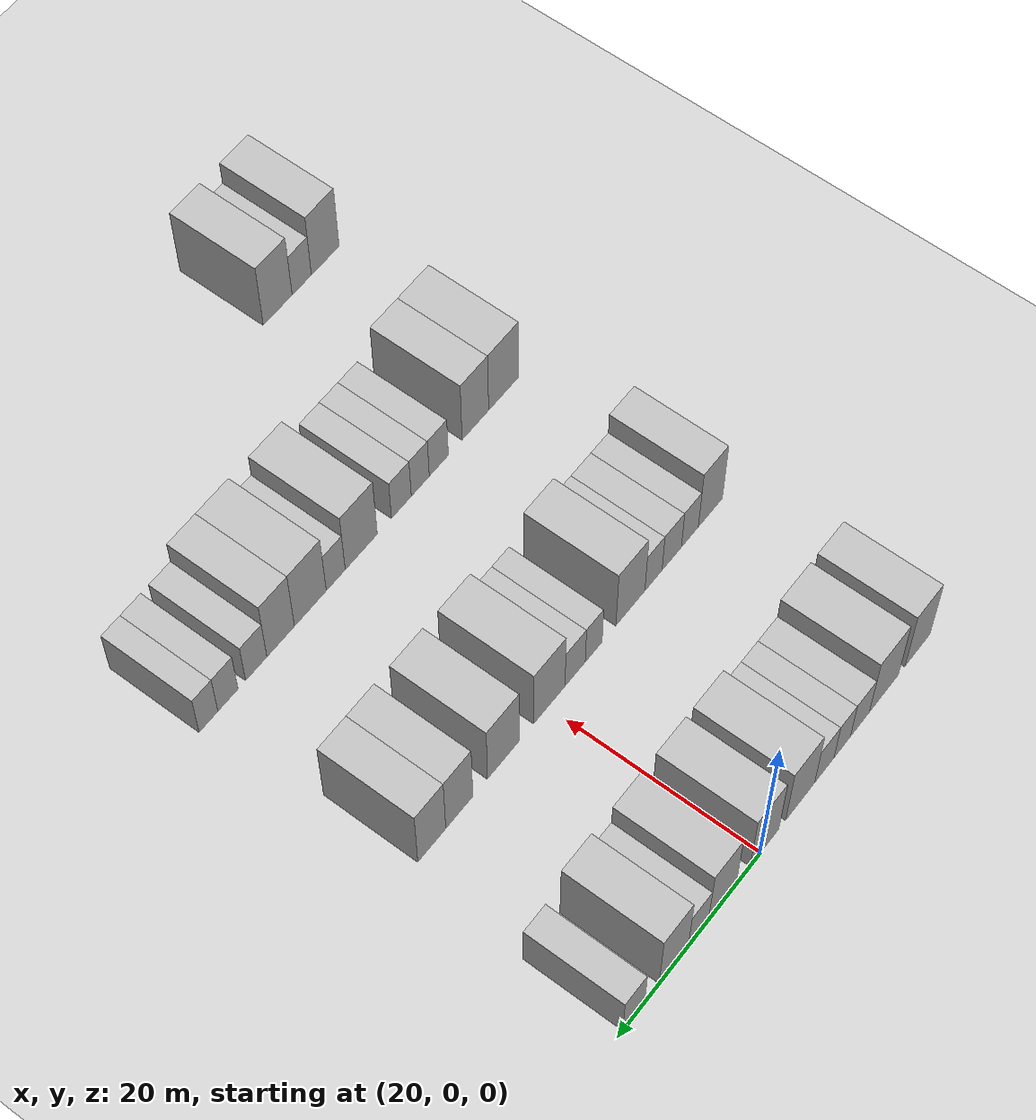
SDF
<sdf version="1.6">
 <world name="default">
  <include><name>ground_plane_1</name><uri>model://HANNAS_ground_plane</uri></include>
  <model name="building_91">
   <static>1</static>
   <pose>25.0000 -23.4855 0 0.000000 0.000000 0.000000</pose>
   <link name="link">
    <pose>0 0 4.50 0 0 0</pose>
    <collision name="collision"><geometry><box><size>10.0000 3.9057 9.0000</size></box></geometry></collision>
    <visual name="visual">
     <cast_shadows>0</cast_shadows>
     <geometry><box><size>10.0000 3.9057 9.0000</size></box></geometry>
     <material>
      <script>
       <uri>model://HANNAS_wall/materials/scripts</uri>
       <uri>model://HANNAS_wall/materials/textures</uri>
       <name>vrc/HANNAS_wall</name>
      </script>
     </material>
    </visual>
   </link>
  </model>
  <model name="building_92">
   <static>1</static>
   <pose>25.0000 -18.3001 0 0.000000 0.000000 0.000000</pose>
   <link name="link">
    <pose>0 0 4.50 0 0 0</pose>
    <collision name="collision"><geometry><box><size>10.0000 4.4651 9.0000</size></box></geometry></collision>
    <visual name="visual">
     <cast_shadows>0</cast_shadows>
     <geometry><box><size>10.0000 4.4651 9.0000</size></box></geometry>
     <material>
      <script>
       <uri>model://HANNAS_wall/materials/scripts</uri>
       <uri>model://HANNAS_wall/materials/textures</uri>
       <name>vrc/HANNAS_wall</name>
      </script>
     </material>
    </visual>
   </link>
  </model>
  <model name="building_93">
   <static>1</static>
   <pose>25.0000 -14.6301 0 0.000000 0.000000 0.000000</pose>
   <link name="link">
    <pose>0 0 3.00 0 0 0</pose>
    <collision name="collision"><geometry><box><size>10.0000 2.8748 6.0000</size></box></geometry></collision>
    <visual name="visual">
     <cast_shadows>0</cast_shadows>
     <geometry><box><size>10.0000 2.8748 6.0000</size></box></geometry>
     <material>
      <script>
       <uri>model://HANNAS_wall/materials/scripts</uri>
       <uri>model://HANNAS_wall/materials/textures</uri>
       <name>vrc/HANNAS_wall</name>
      </script>
     </material>
    </visual>
   </link>
  </model>
  <model name="building_94">
   <static>1</static>
   <pose>25.0000 -11.9665 0 0.000000 0.000000 0.000000</pose>
   <link name="link">
    <pose>0 0 3.00 0 0 0</pose>
    <collision name="collision"><geometry><box><size>10.0000 2.4523 6.0000</size></box></geometry></collision>
    <visual name="visual">
     <cast_shadows>0</cast_shadows>
     <geometry><box><size>10.0000 2.4523 6.0000</size></box></geometry>
     <material>
      <script>
       <uri>model://HANNAS_wall/materials/scripts</uri>
       <uri>model://HANNAS_wall/materials/textures</uri>
       <name>vrc/HANNAS_wall</name>
      </script>
     </material>
    </visual>
   </link>
  </model>
  <model name="building_95">
   <static>1</static>
   <pose>25.0000 -9.3056 0 0.000000 0.000000 0.000000</pose>
   <link name="link">
    <pose>0 0 3.00 0 0 0</pose>
    <collision name="collision"><geometry><box><size>10.0000 2.8696 6.0000</size></box></geometry></collision>
    <visual name="visual">
     <cast_shadows>0</cast_shadows>
     <geometry><box><size>10.0000 2.8696 6.0000</size></box></geometry>
     <material>
      <script>
       <uri>model://HANNAS_wall/materials/scripts</uri>
       <uri>model://HANNAS_wall/materials/textures</uri>
       <name>vrc/HANNAS_wall</name>
      </script>
     </material>
    </visual>
   </link>
  </model>
  <model name="building_96">
   <static>1</static>
   <pose>25.0000 -5.7426 0 0.000000 0.000000 0.000000</pose>
   <link name="link">
    <pose>0 0 4.50 0 0 0</pose>
    <collision name="collision"><geometry><box><size>10.0000 4.2564 9.0000</size></box></geometry></collision>
    <visual name="visual">
     <cast_shadows>0</cast_shadows>
     <geometry><box><size>10.0000 4.2564 9.0000</size></box></geometry>
     <material>
      <script>
       <uri>model://HANNAS_wall/materials/scripts</uri>
       <uri>model://HANNAS_wall/materials/textures</uri>
       <name>vrc/HANNAS_wall</name>
      </script>
     </material>
    </visual>
   </link>
  </model>
  <model name="building_97">
   <static>1</static>
   <pose>25.0000 -0.5386 0 0.000000 0.000000 0.000000</pose>
   <link name="link">
    <pose>0 0 4.50 0 0 0</pose>
    <collision name="collision"><geometry><box><size>10.0000 4.1515 9.0000</size></box></geometry></collision>
    <visual name="visual">
     <cast_shadows>0</cast_shadows>
     <geometry><box><size>10.0000 4.1515 9.0000</size></box></geometry>
     <material>
      <script>
       <uri>model://HANNAS_wall/materials/scripts</uri>
       <uri>model://HANNAS_wall/materials/textures</uri>
       <name>vrc/HANNAS_wall</name>
      </script>
     </material>
    </visual>
   </link>
  </model>
  <model name="building_98">
   <static>1</static>
   <pose>25.0000 5.4912 0 0.000000 0.000000 0.000000</pose>
   <link name="link">
    <pose>0 0 4.50 0 0 0</pose>
    <collision name="collision"><geometry><box><size>10.0000 3.9081 9.0000</size></box></geometry></collision>
    <visual name="visual">
     <cast_shadows>0</cast_shadows>
     <geometry><box><size>10.0000 3.9081 9.0000</size></box></geometry>
     <material>
      <script>
       <uri>model://HANNAS_wall/materials/scripts</uri>
       <uri>model://HANNAS_wall/materials/textures</uri>
       <name>vrc/HANNAS_wall</name>
      </script>
     </material>
    </visual>
   </link>
  </model>
  <model name="building_99">
   <static>1</static>
   <pose>25.0000 8.8556 0 0.000000 0.000000 0.000000</pose>
   <link name="link">
    <pose>0 0 3.00 0 0 0</pose>
    <collision name="collision"><geometry><box><size>10.0000 2.8207 6.0000</size></box></geometry></collision>
    <visual name="visual">
     <cast_shadows>0</cast_shadows>
     <geometry><box><size>10.0000 2.8207 6.0000</size></box></geometry>
     <material>
      <script>
       <uri>model://HANNAS_wall/materials/scripts</uri>
       <uri>model://HANNAS_wall/materials/textures</uri>
       <name>vrc/HANNAS_wall</name>
      </script>
     </material>
    </visual>
   </link>
  </model>
  <model name="building_100">
   <static>1</static>
   <pose>25.0000 12.2772 0 0.000000 0.000000 0.000000</pose>
   <link name="link">
    <pose>0 0 4.50 0 0 0</pose>
    <collision name="collision"><geometry><box><size>10.0000 4.0226 9.0000</size></box></geometry></collision>
    <visual name="visual">
     <cast_shadows>0</cast_shadows>
     <geometry><box><size>10.0000 4.0226 9.0000</size></box></geometry>
     <material>
      <script>
       <uri>model://HANNAS_wall/materials/scripts</uri>
       <uri>model://HANNAS_wall/materials/textures</uri>
       <name>vrc/HANNAS_wall</name>
      </script>
     </material>
    </visual>
   </link>
  </model>
  <model name="building_101">
   <static>1</static>
   <pose>25.0000 17.7709 0 0.000000 0.000000 0.000000</pose>
   <link name="link">
    <pose>0 0 3.00 0 0 0</pose>
    <collision name="collision"><geometry><box><size>10.0000 2.9647 6.0000</size></box></geometry></collision>
    <visual name="visual">
     <cast_shadows>0</cast_shadows>
     <geometry><box><size>10.0000 2.9647 6.0000</size></box></geometry>
     <material>
      <script>
       <uri>model://HANNAS_wall/materials/scripts</uri>
       <uri>model://HANNAS_wall/materials/textures</uri>
       <name>vrc/HANNAS_wall</name>
      </script>
     </material>
    </visual>
   </link>
  </model>
  <model name="building_278">
   <static>1</static>
   <pose>47.0000 -23.8120 0 0.000000 0.000000 0.000000</pose>
   <link name="link">
    <pose>0 0 4.50 0 0 0</pose>
    <collision name="collision"><geometry><box><size>10.0000 3.6523 9.0000</size></box></geometry></collision>
    <visual name="visual">
     <cast_shadows>0</cast_shadows>
     <geometry><box><size>10.0000 3.6523 9.0000</size></box></geometry>
     <material>
      <script>
       <uri>model://HANNAS_wall/materials/scripts</uri>
       <uri>model://HANNAS_wall/materials/textures</uri>
       <name>vrc/HANNAS_wall</name>
      </script>
     </material>
    </visual>
   </link>
  </model>
  <model name="building_279">
   <static>1</static>
   <pose>47.0000 -20.7096 0 0.000000 0.000000 0.000000</pose>
   <link name="link">
    <pose>0 0 3.00 0 0 0</pose>
    <collision name="collision"><geometry><box><size>10.0000 2.5525 6.0000</size></box></geometry></collision>
    <visual name="visual">
     <cast_shadows>0</cast_shadows>
     <geometry><box><size>10.0000 2.5525 6.0000</size></box></geometry>
     <material>
      <script>
       <uri>model://HANNAS_wall/materials/scripts</uri>
       <uri>model://HANNAS_wall/materials/textures</uri>
       <name>vrc/HANNAS_wall</name>
      </script>
     </material>
    </visual>
   </link>
  </model>
  <model name="building_280">
   <static>1</static>
   <pose>47.0000 -17.9913 0 0.000000 0.000000 0.000000</pose>
   <link name="link">
    <pose>0 0 3.00 0 0 0</pose>
    <collision name="collision"><geometry><box><size>10.0000 2.8841 6.0000</size></box></geometry></collision>
    <visual name="visual">
     <cast_shadows>0</cast_shadows>
     <geometry><box><size>10.0000 2.8841 6.0000</size></box></geometry>
     <material>
      <script>
       <uri>model://HANNAS_wall/materials/scripts</uri>
       <uri>model://HANNAS_wall/materials/textures</uri>
       <name>vrc/HANNAS_wall</name>
      </script>
     </material>
    </visual>
   </link>
  </model>
  <model name="building_281">
   <static>1</static>
   <pose>47.0000 -15.2765 0 0.000000 0.000000 0.000000</pose>
   <link name="link">
    <pose>0 0 3.00 0 0 0</pose>
    <collision name="collision"><geometry><box><size>10.0000 2.5456 6.0000</size></box></geometry></collision>
    <visual name="visual">
     <cast_shadows>0</cast_shadows>
     <geometry><box><size>10.0000 2.5456 6.0000</size></box></geometry>
     <material>
      <script>
       <uri>model://HANNAS_wall/materials/scripts</uri>
       <uri>model://HANNAS_wall/materials/textures</uri>
       <name>vrc/HANNAS_wall</name>
      </script>
     </material>
    </visual>
   </link>
  </model>
  <model name="building_282">
   <static>1</static>
   <pose>47.0000 -11.8802 0 0.000000 0.000000 0.000000</pose>
   <link name="link">
    <pose>0 0 4.50 0 0 0</pose>
    <collision name="collision"><geometry><box><size>10.0000 4.2469 9.0000</size></box></geometry></collision>
    <visual name="visual">
     <cast_shadows>0</cast_shadows>
     <geometry><box><size>10.0000 4.2469 9.0000</size></box></geometry>
     <material>
      <script>
       <uri>model://HANNAS_wall/materials/scripts</uri>
       <uri>model://HANNAS_wall/materials/textures</uri>
       <name>vrc/HANNAS_wall</name>
      </script>
     </material>
    </visual>
   </link>
  </model>
  <model name="building_283">
   <static>1</static>
   <pose>47.0000 -6.5452 0 0.000000 0.000000 0.000000</pose>
   <link name="link">
    <pose>0 0 3.00 0 0 0</pose>
    <collision name="collision"><geometry><box><size>10.0000 2.4231 6.0000</size></box></geometry></collision>
    <visual name="visual">
     <cast_shadows>0</cast_shadows>
     <geometry><box><size>10.0000 2.4231 6.0000</size></box></geometry>
     <material>
      <script>
       <uri>model://HANNAS_wall/materials/scripts</uri>
       <uri>model://HANNAS_wall/materials/textures</uri>
       <name>vrc/HANNAS_wall</name>
      </script>
     </material>
    </visual>
   </link>
  </model>
  <model name="building_284">
   <static>1</static>
   <pose>47.0000 -3.8878 0 0.000000 0.000000 0.000000</pose>
   <link name="link">
    <pose>0 0 3.00 0 0 0</pose>
    <collision name="collision"><geometry><box><size>10.0000 2.8918 6.0000</size></box></geometry></collision>
    <visual name="visual">
     <cast_shadows>0</cast_shadows>
     <geometry><box><size>10.0000 2.8918 6.0000</size></box></geometry>
     <material>
      <script>
       <uri>model://HANNAS_wall/materials/scripts</uri>
       <uri>model://HANNAS_wall/materials/textures</uri>
       <name>vrc/HANNAS_wall</name>
      </script>
     </material>
    </visual>
   </link>
  </model>
  <model name="building_285">
   <static>1</static>
   <pose>47.0000 -0.2331 0 0.000000 0.000000 0.000000</pose>
   <link name="link">
    <pose>0 0 4.50 0 0 0</pose>
    <collision name="collision"><geometry><box><size>10.0000 4.4175 9.0000</size></box></geometry></collision>
    <visual name="visual">
     <cast_shadows>0</cast_shadows>
     <geometry><box><size>10.0000 4.4175 9.0000</size></box></geometry>
     <material>
      <script>
       <uri>model://HANNAS_wall/materials/scripts</uri>
       <uri>model://HANNAS_wall/materials/textures</uri>
       <name>vrc/HANNAS_wall</name>
      </script>
     </material>
    </visual>
   </link>
  </model>
  <model name="building_286">
   <static>1</static>
   <pose>47.0000 6.1808 0 0.000000 0.000000 0.000000</pose>
   <link name="link">
    <pose>0 0 4.50 0 0 0</pose>
    <collision name="collision"><geometry><box><size>10.0000 4.4102 9.0000</size></box></geometry></collision>
    <visual name="visual">
     <cast_shadows>0</cast_shadows>
     <geometry><box><size>10.0000 4.4102 9.0000</size></box></geometry>
     <material>
      <script>
       <uri>model://HANNAS_wall/materials/scripts</uri>
       <uri>model://HANNAS_wall/materials/textures</uri>
       <name>vrc/HANNAS_wall</name>
      </script>
     </material>
    </visual>
   </link>
  </model>
  <model name="building_287">
   <static>1</static>
   <pose>47.0000 12.2134 0 0.000000 0.000000 0.000000</pose>
   <link name="link">
    <pose>0 0 4.50 0 0 0</pose>
    <collision name="collision"><geometry><box><size>10.0000 3.6551 9.0000</size></box></geometry></collision>
    <visual name="visual">
     <cast_shadows>0</cast_shadows>
     <geometry><box><size>10.0000 3.6551 9.0000</size></box></geometry>
     <material>
      <script>
       <uri>model://HANNAS_wall/materials/scripts</uri>
       <uri>model://HANNAS_wall/materials/textures</uri>
       <name>vrc/HANNAS_wall</name>
      </script>
     </material>
    </visual>
   </link>
  </model>
  <model name="building_288">
   <static>1</static>
   <pose>47.0000 15.9133 0 0.000000 0.000000 0.000000</pose>
   <link name="link">
    <pose>0 0 4.50 0 0 0</pose>
    <collision name="collision"><geometry><box><size>10.0000 3.7447 9.0000</size></box></geometry></collision>
    <visual name="visual">
     <cast_shadows>0</cast_shadows>
     <geometry><box><size>10.0000 3.7447 9.0000</size></box></geometry>
     <material>
      <script>
       <uri>model://HANNAS_wall/materials/scripts</uri>
       <uri>model://HANNAS_wall/materials/textures</uri>
       <name>vrc/HANNAS_wall</name>
      </script>
     </material>
    </visual>
   </link>
  </model>
  <model name="building_466">
   <static>1</static>
   <pose>69.0000 -22.6189 0 0.000000 0.000000 0.000000</pose>
   <link name="link">
    <pose>0 0 4.50 0 0 0</pose>
    <collision name="collision"><geometry><box><size>10.0000 4.4505 9.0000</size></box></geometry></collision>
    <visual name="visual">
     <cast_shadows>0</cast_shadows>
     <geometry><box><size>10.0000 4.4505 9.0000</size></box></geometry>
     <material>
      <script>
       <uri>model://HANNAS_wall/materials/scripts</uri>
       <uri>model://HANNAS_wall/materials/textures</uri>
       <name>vrc/HANNAS_wall</name>
      </script>
     </material>
    </visual>
   </link>
  </model>
  <model name="building_467">
   <static>1</static>
   <pose>69.0000 -18.4472 0 0.000000 0.000000 0.000000</pose>
   <link name="link">
    <pose>0 0 4.50 0 0 0</pose>
    <collision name="collision"><geometry><box><size>10.0000 3.8929 9.0000</size></box></geometry></collision>
    <visual name="visual">
     <cast_shadows>0</cast_shadows>
     <geometry><box><size>10.0000 3.8929 9.0000</size></box></geometry>
     <material>
      <script>
       <uri>model://HANNAS_wall/materials/scripts</uri>
       <uri>model://HANNAS_wall/materials/textures</uri>
       <name>vrc/HANNAS_wall</name>
      </script>
     </material>
    </visual>
   </link>
  </model>
  <model name="building_468">
   <static>1</static>
   <pose>69.0000 -13.1316 0 0.000000 0.000000 0.000000</pose>
   <link name="link">
    <pose>0 0 3.00 0 0 0</pose>
    <collision name="collision"><geometry><box><size>10.0000 2.7383 6.0000</size></box></geometry></collision>
    <visual name="visual">
     <cast_shadows>0</cast_shadows>
     <geometry><box><size>10.0000 2.7383 6.0000</size></box></geometry>
     <material>
      <script>
       <uri>model://HANNAS_wall/materials/scripts</uri>
       <uri>model://HANNAS_wall/materials/textures</uri>
       <name>vrc/HANNAS_wall</name>
      </script>
     </material>
    </visual>
   </link>
  </model>
  <model name="building_469">
   <static>1</static>
   <pose>69.0000 -10.4739 0 0.000000 0.000000 0.000000</pose>
   <link name="link">
    <pose>0 0 3.00 0 0 0</pose>
    <collision name="collision"><geometry><box><size>10.0000 2.5770 6.0000</size></box></geometry></collision>
    <visual name="visual">
     <cast_shadows>0</cast_shadows>
     <geometry><box><size>10.0000 2.5770 6.0000</size></box></geometry>
     <material>
      <script>
       <uri>model://HANNAS_wall/materials/scripts</uri>
       <uri>model://HANNAS_wall/materials/textures</uri>
       <name>vrc/HANNAS_wall</name>
      </script>
     </material>
    </visual>
   </link>
  </model>
  <model name="building_470">
   <static>1</static>
   <pose>69.0000 -7.7820 0 0.000000 0.000000 0.000000</pose>
   <link name="link">
    <pose>0 0 3.00 0 0 0</pose>
    <collision name="collision"><geometry><box><size>10.0000 2.8068 6.0000</size></box></geometry></collision>
    <visual name="visual">
     <cast_shadows>0</cast_shadows>
     <geometry><box><size>10.0000 2.8068 6.0000</size></box></geometry>
     <material>
      <script>
       <uri>model://HANNAS_wall/materials/scripts</uri>
       <uri>model://HANNAS_wall/materials/textures</uri>
       <name>vrc/HANNAS_wall</name>
      </script>
     </material>
    </visual>
   </link>
  </model>
  <model name="building_471">
   <static>1</static>
   <pose>69.0000 -2.1465 0 0.000000 0.000000 0.000000</pose>
   <link name="link">
    <pose>0 0 4.50 0 0 0</pose>
    <collision name="collision"><geometry><box><size>10.0000 4.4643 9.0000</size></box></geometry></collision>
    <visual name="visual">
     <cast_shadows>0</cast_shadows>
     <geometry><box><size>10.0000 4.4643 9.0000</size></box></geometry>
     <material>
      <script>
       <uri>model://HANNAS_wall/materials/scripts</uri>
       <uri>model://HANNAS_wall/materials/textures</uri>
       <name>vrc/HANNAS_wall</name>
      </script>
     </material>
    </visual>
   </link>
  </model>
  <model name="building_472">
   <static>1</static>
   <pose>69.0000 1.3927 0 0.000000 0.000000 0.000000</pose>
   <link name="link">
    <pose>0 0 3.00 0 0 0</pose>
    <collision name="collision"><geometry><box><size>10.0000 2.6140 6.0000</size></box></geometry></collision>
    <visual name="visual">
     <cast_shadows>0</cast_shadows>
     <geometry><box><size>10.0000 2.6140 6.0000</size></box></geometry>
     <material>
      <script>
       <uri>model://HANNAS_wall/materials/scripts</uri>
       <uri>model://HANNAS_wall/materials/textures</uri>
       <name>vrc/HANNAS_wall</name>
      </script>
     </material>
    </visual>
   </link>
  </model>
  <model name="building_473">
   <static>1</static>
   <pose>69.0000 4.8697 0 0.000000 0.000000 0.000000</pose>
   <link name="link">
    <pose>0 0 4.50 0 0 0</pose>
    <collision name="collision"><geometry><box><size>10.0000 4.3401 9.0000</size></box></geometry></collision>
    <visual name="visual">
     <cast_shadows>0</cast_shadows>
     <geometry><box><size>10.0000 4.3401 9.0000</size></box></geometry>
     <material>
      <script>
       <uri>model://HANNAS_wall/materials/scripts</uri>
       <uri>model://HANNAS_wall/materials/textures</uri>
       <name>vrc/HANNAS_wall</name>
      </script>
     </material>
    </visual>
   </link>
  </model>
  <model name="building_474">
   <static>1</static>
   <pose>69.0000 8.8950 0 0.000000 0.000000 0.000000</pose>
   <link name="link">
    <pose>0 0 4.50 0 0 0</pose>
    <collision name="collision"><geometry><box><size>10.0000 3.7105 9.0000</size></box></geometry></collision>
    <visual name="visual">
     <cast_shadows>0</cast_shadows>
     <geometry><box><size>10.0000 3.7105 9.0000</size></box></geometry>
     <material>
      <script>
       <uri>model://HANNAS_wall/materials/scripts</uri>
       <uri>model://HANNAS_wall/materials/textures</uri>
       <name>vrc/HANNAS_wall</name>
      </script>
     </material>
    </visual>
   </link>
  </model>
  <model name="building_475">
   <static>1</static>
   <pose>69.0000 12.1668 0 0.000000 0.000000 0.000000</pose>
   <link name="link">
    <pose>0 0 3.00 0 0 0</pose>
    <collision name="collision"><geometry><box><size>10.0000 2.8330 6.0000</size></box></geometry></collision>
    <visual name="visual">
     <cast_shadows>0</cast_shadows>
     <geometry><box><size>10.0000 2.8330 6.0000</size></box></geometry>
     <material>
      <script>
       <uri>model://HANNAS_wall/materials/scripts</uri>
       <uri>model://HANNAS_wall/materials/textures</uri>
       <name>vrc/HANNAS_wall</name>
      </script>
     </material>
    </visual>
   </link>
  </model>
  <model name="building_476">
   <static>1</static>
   <pose>69.0000 15.9097 0 0.000000 0.000000 0.000000</pose>
   <link name="link">
    <pose>0 0 3.00 0 0 0</pose>
    <collision name="collision"><geometry><box><size>10.0000 2.6529 6.0000</size></box></geometry></collision>
    <visual name="visual">
     <cast_shadows>0</cast_shadows>
     <geometry><box><size>10.0000 2.6529 6.0000</size></box></geometry>
     <material>
      <script>
       <uri>model://HANNAS_wall/materials/scripts</uri>
       <uri>model://HANNAS_wall/materials/textures</uri>
       <name>vrc/HANNAS_wall</name>
      </script>
     </material>
    </visual>
   </link>
  </model>
  <model name="building_477">
   <static>1</static>
   <pose>69.0000 18.4630 0 0.000000 0.000000 0.000000</pose>
   <link name="link">
    <pose>0 0 3.00 0 0 0</pose>
    <collision name="collision"><geometry><box><size>10.0000 2.4536 6.0000</size></box></geometry></collision>
    <visual name="visual">
     <cast_shadows>0</cast_shadows>
     <geometry><box><size>10.0000 2.4536 6.0000</size></box></geometry>
     <material>
      <script>
       <uri>model://HANNAS_wall/materials/scripts</uri>
       <uri>model://HANNAS_wall/materials/textures</uri>
       <name>vrc/HANNAS_wall</name>
      </script>
     </material>
    </visual>
   </link>
  </model>
  <model name="building_660">
   <static>1</static>
   <pose>91.0000 -24.1665 0 0.000000 0.000000 0.000000</pose>
   <link name="link">
    <pose>0 0 4.50 0 0 0</pose>
    <collision name="collision"><geometry><box><size>10.0000 4.0540 9.0000</size></box></geometry></collision>
    <visual name="visual">
     <cast_shadows>0</cast_shadows>
     <geometry><box><size>10.0000 4.0540 9.0000</size></box></geometry>
     <material>
      <script>
       <uri>model://HANNAS_wall/materials/scripts</uri>
       <uri>model://HANNAS_wall/materials/textures</uri>
       <name>vrc/HANNAS_wall</name>
      </script>
     </material>
    </visual>
   </link>
  </model>
  <model name="building_661">
   <static>1</static>
   <pose>91.0000 -20.7415 0 0.000000 0.000000 0.000000</pose>
   <link name="link">
    <pose>0 0 3.00 0 0 0</pose>
    <collision name="collision"><geometry><box><size>10.0000 2.7960 6.0000</size></box></geometry></collision>
    <visual name="visual">
     <cast_shadows>0</cast_shadows>
     <geometry><box><size>10.0000 2.7960 6.0000</size></box></geometry>
     <material>
      <script>
       <uri>model://HANNAS_wall/materials/scripts</uri>
       <uri>model://HANNAS_wall/materials/textures</uri>
       <name>vrc/HANNAS_wall</name>
      </script>
     </material>
    </visual>
   </link>
  </model>
  <model name="building_662">
   <static>1</static>
   <pose>91.0000 -17.2633 0 0.000000 0.000000 0.000000</pose>
   <link name="link">
    <pose>0 0 4.50 0 0 0</pose>
    <collision name="collision"><geometry><box><size>10.0000 4.1604 9.0000</size></box></geometry></collision>
    <visual name="visual">
     <cast_shadows>0</cast_shadows>
     <geometry><box><size>10.0000 4.1604 9.0000</size></box></geometry>
     <material>
      <script>
       <uri>model://HANNAS_wall/materials/scripts</uri>
       <uri>model://HANNAS_wall/materials/textures</uri>
       <name>vrc/HANNAS_wall</name>
      </script>
     </material>
    </visual>
   </link>
  </model>
 </world>
</sdf>
